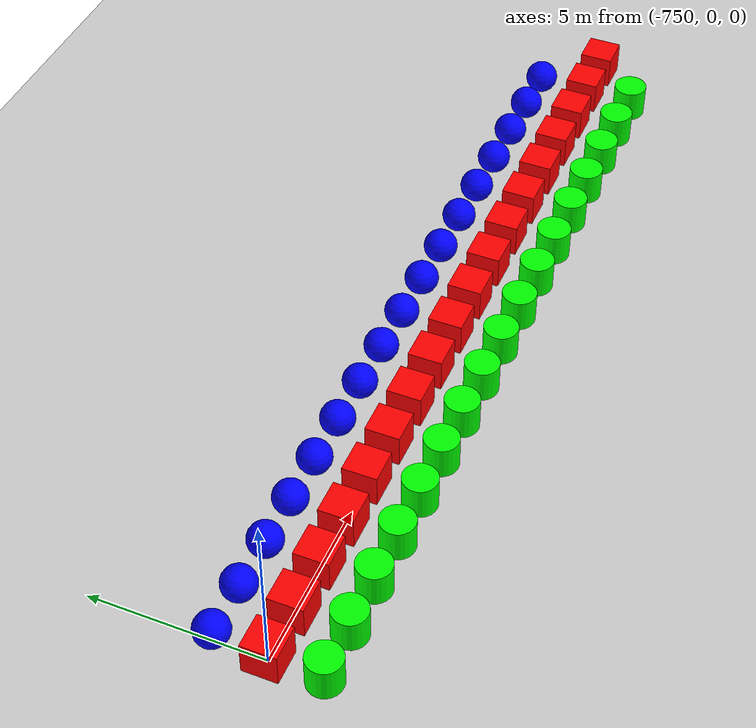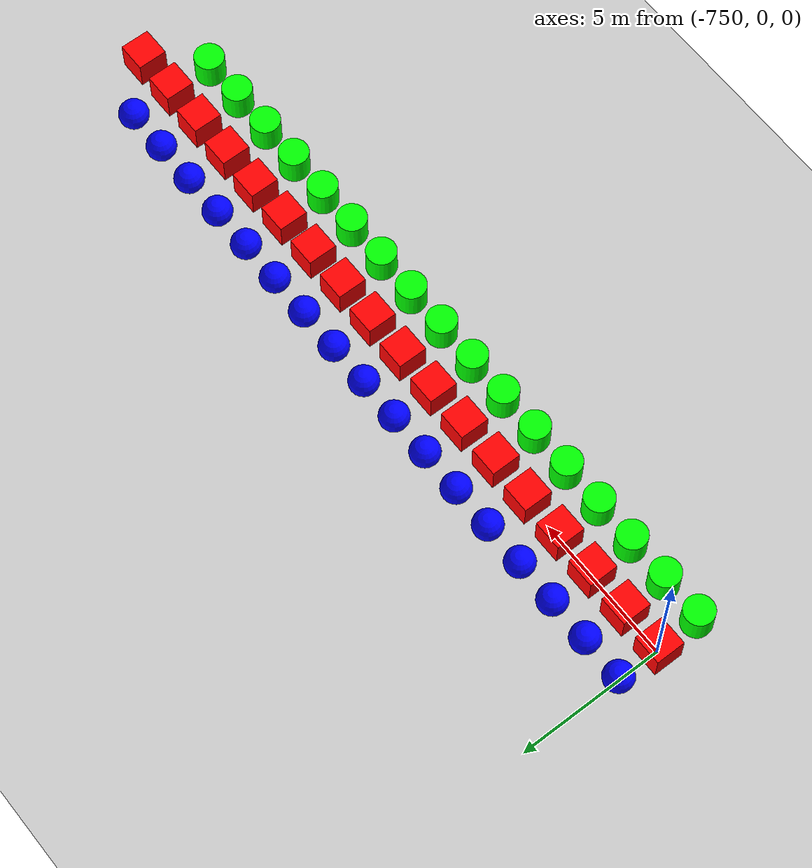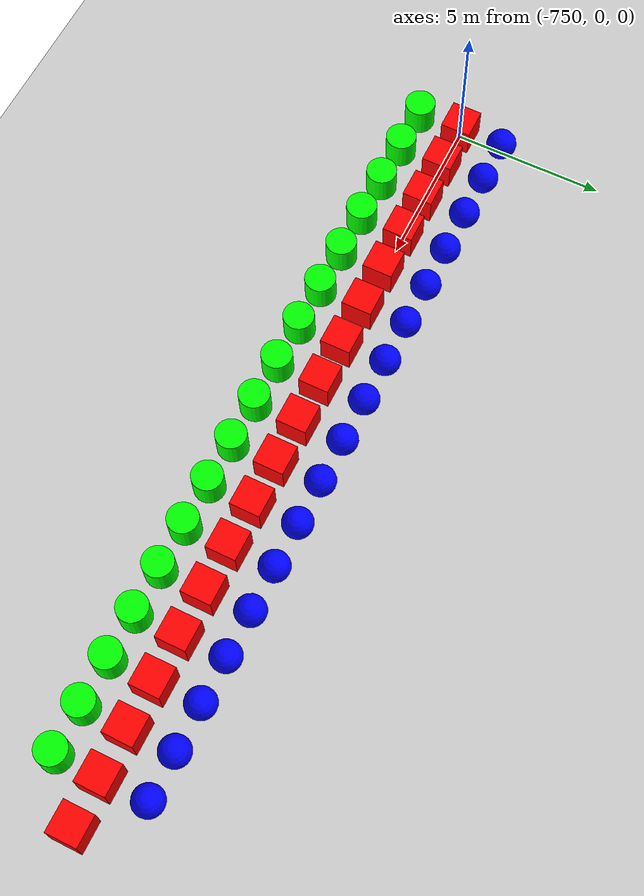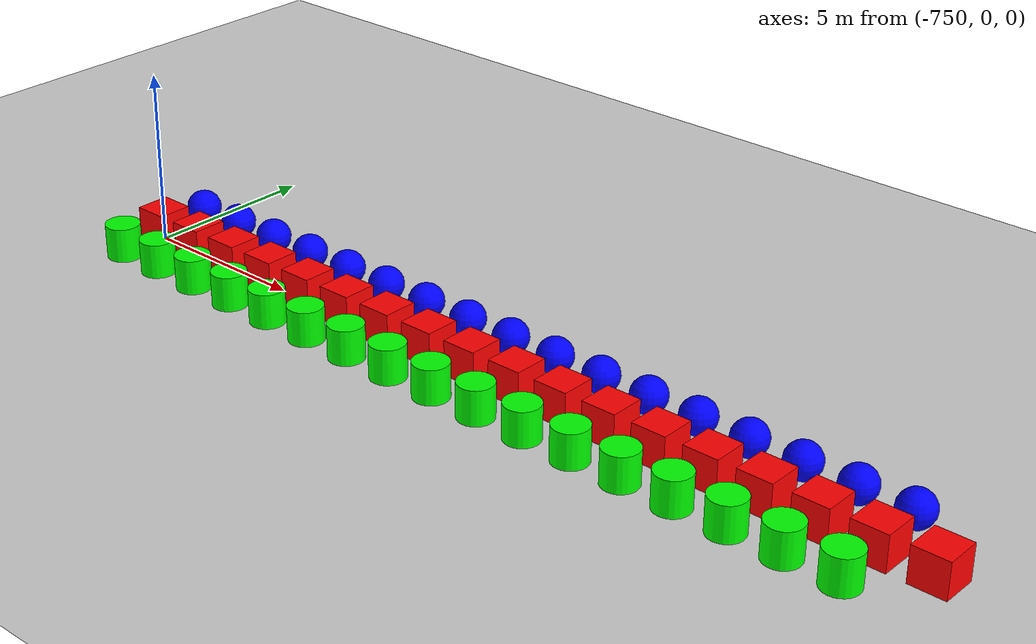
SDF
<sdf version="1.6">
 <world name="shapes">
  <model name="ground_plane">
   <static>true</static>
   <link name="link">
    <collision name="collision">
     <geometry><plane><normal>0 0 1</normal><size>100 100</size></plane></geometry>
    </collision>
    <visual name="visual">
     <geometry><plane><normal>0 0 1</normal><size>100 100</size></plane></geometry>
     <material>
      <ambient>0.8 0.8 0.8 1</ambient>
      <diffuse>0.8 0.8 0.8 1</diffuse>
      <specular>0.8 0.8 0.8 1</specular>
     </material>
    </visual>
   </link>
  </model>
  <model name="box_0">
   <pose>-750.0 0 0.5 0 0 0</pose>
   <link name="box_link">
    <inertial>
     <inertia><ixx>1</ixx><ixy>0</ixy><ixz>0</ixz><iyy>1</iyy><iyz>0</iyz><izz>1</izz></inertia>
     <mass>1.0</mass>
    </inertial>
    <collision name="box_collision"><geometry><box><size>1 1 1</size></box></geometry></collision>
    <visual name="box_visual">
     <geometry><box><size>1 1 1</size></box></geometry>
     <material><ambient>1 0 0 1</ambient><diffuse>1 0 0 1</diffuse><specular>1 0 0 1</specular></material>
    </visual>
   </link>
  </model>
  <model name="cylinder_0">
   <pose>-750.0 -1.5 0.5 0 0 0</pose>
   <link name="cylinder_link">
    <inertial>
     <inertia><ixx>2</ixx><ixy>0</ixy><ixz>0</ixz><iyy>2</iyy><iyz>0</iyz><izz>2</izz></inertia>
     <mass>2.0</mass>
    </inertial>
    <collision name="cylinder_collision">
     <geometry><cylinder><radius>0.5</radius><length>1.0</length></cylinder></geometry>
    </collision>
    <visual name="cylinder_visual">
     <geometry><cylinder><radius>0.5</radius><length>1.0</length></cylinder></geometry>
     <material><ambient>0 1 0 1</ambient><diffuse>0 1 0 1</diffuse><specular>0 1 0 1</specular></material>
    </visual>
   </link>
  </model>
  <model name="sphere_0">
   <pose>-750.0 1.5 0.5 0 0 0</pose>
   <link name="sphere_link">
    <inertial>
     <inertia><ixx>3</ixx><ixy>0</ixy><ixz>0</ixz><iyy>3</iyy><iyz>0</iyz><izz>3</izz></inertia>
     <mass>3.0</mass>
    </inertial>
    <collision name="sphere_collision"><geometry><sphere><radius>0.5</radius></sphere></geometry></collision>
    <visual name="sphere_visual">
     <geometry><sphere><radius>0.5</radius></sphere></geometry>
     <material><ambient>0 0 1 1</ambient><diffuse>0 0 1 1</diffuse><specular>0 0 1 1</specular></material>
    </visual>
   </link>
  </model>
  <model name="box_1">
   <pose>-748.5 0 0.5 0 0 0</pose>
   <link name="box_link">
    <inertial>
     <inertia><ixx>1</ixx><ixy>0</ixy><ixz>0</ixz><iyy>1</iyy><iyz>0</iyz><izz>1</izz></inertia>
     <mass>1.0</mass>
    </inertial>
    <collision name="box_collision"><geometry><box><size>1 1 1</size></box></geometry></collision>
    <visual name="box_visual">
     <geometry><box><size>1 1 1</size></box></geometry>
     <material><ambient>1 0 0 1</ambient><diffuse>1 0 0 1</diffuse><specular>1 0 0 1</specular></material>
    </visual>
   </link>
  </model>
  <model name="cylinder_1">
   <pose>-748.5 -1.5 0.5 0 0 0</pose>
   <link name="cylinder_link">
    <inertial>
     <inertia><ixx>2</ixx><ixy>0</ixy><ixz>0</ixz><iyy>2</iyy><iyz>0</iyz><izz>2</izz></inertia>
     <mass>2.0</mass>
    </inertial>
    <collision name="cylinder_collision">
     <geometry><cylinder><radius>0.5</radius><length>1.0</length></cylinder></geometry>
    </collision>
    <visual name="cylinder_visual">
     <geometry><cylinder><radius>0.5</radius><length>1.0</length></cylinder></geometry>
     <material><ambient>0 1 0 1</ambient><diffuse>0 1 0 1</diffuse><specular>0 1 0 1</specular></material>
    </visual>
   </link>
  </model>
  <model name="sphere_1">
   <pose>-748.5 1.5 0.5 0 0 0</pose>
   <link name="sphere_link">
    <inertial>
     <inertia><ixx>3</ixx><ixy>0</ixy><ixz>0</ixz><iyy>3</iyy><iyz>0</iyz><izz>3</izz></inertia>
     <mass>3.0</mass>
    </inertial>
    <collision name="sphere_collision"><geometry><sphere><radius>0.5</radius></sphere></geometry></collision>
    <visual name="sphere_visual">
     <geometry><sphere><radius>0.5</radius></sphere></geometry>
     <material><ambient>0 0 1 1</ambient><diffuse>0 0 1 1</diffuse><specular>0 0 1 1</specular></material>
    </visual>
   </link>
  </model>
  <model name="box_2">
   <pose>-747.0 0 0.5 0 0 0</pose>
   <link name="box_link">
    <inertial>
     <inertia><ixx>1</ixx><ixy>0</ixy><ixz>0</ixz><iyy>1</iyy><iyz>0</iyz><izz>1</izz></inertia>
     <mass>1.0</mass>
    </inertial>
    <collision name="box_collision"><geometry><box><size>1 1 1</size></box></geometry></collision>
    <visual name="box_visual">
     <geometry><box><size>1 1 1</size></box></geometry>
     <material><ambient>1 0 0 1</ambient><diffuse>1 0 0 1</diffuse><specular>1 0 0 1</specular></material>
    </visual>
   </link>
  </model>
  <model name="cylinder_2">
   <pose>-747.0 -1.5 0.5 0 0 0</pose>
   <link name="cylinder_link">
    <inertial>
     <inertia><ixx>2</ixx><ixy>0</ixy><ixz>0</ixz><iyy>2</iyy><iyz>0</iyz><izz>2</izz></inertia>
     <mass>2.0</mass>
    </inertial>
    <collision name="cylinder_collision">
     <geometry><cylinder><radius>0.5</radius><length>1.0</length></cylinder></geometry>
    </collision>
    <visual name="cylinder_visual">
     <geometry><cylinder><radius>0.5</radius><length>1.0</length></cylinder></geometry>
     <material><ambient>0 1 0 1</ambient><diffuse>0 1 0 1</diffuse><specular>0 1 0 1</specular></material>
    </visual>
   </link>
  </model>
  <model name="sphere_2">
   <pose>-747.0 1.5 0.5 0 0 0</pose>
   <link name="sphere_link">
    <inertial>
     <inertia><ixx>3</ixx><ixy>0</ixy><ixz>0</ixz><iyy>3</iyy><iyz>0</iyz><izz>3</izz></inertia>
     <mass>3.0</mass>
    </inertial>
    <collision name="sphere_collision"><geometry><sphere><radius>0.5</radius></sphere></geometry></collision>
    <visual name="sphere_visual">
     <geometry><sphere><radius>0.5</radius></sphere></geometry>
     <material><ambient>0 0 1 1</ambient><diffuse>0 0 1 1</diffuse><specular>0 0 1 1</specular></material>
    </visual>
   </link>
  </model>
  <model name="box_3">
   <pose>-745.5 0 0.5 0 0 0</pose>
   <link name="box_link">
    <inertial>
     <inertia><ixx>1</ixx><ixy>0</ixy><ixz>0</ixz><iyy>1</iyy><iyz>0</iyz><izz>1</izz></inertia>
     <mass>1.0</mass>
    </inertial>
    <collision name="box_collision"><geometry><box><size>1 1 1</size></box></geometry></collision>
    <visual name="box_visual">
     <geometry><box><size>1 1 1</size></box></geometry>
     <material><ambient>1 0 0 1</ambient><diffuse>1 0 0 1</diffuse><specular>1 0 0 1</specular></material>
    </visual>
   </link>
  </model>
  <model name="cylinder_3">
   <pose>-745.5 -1.5 0.5 0 0 0</pose>
   <link name="cylinder_link">
    <inertial>
     <inertia><ixx>2</ixx><ixy>0</ixy><ixz>0</ixz><iyy>2</iyy><iyz>0</iyz><izz>2</izz></inertia>
     <mass>2.0</mass>
    </inertial>
    <collision name="cylinder_collision">
     <geometry><cylinder><radius>0.5</radius><length>1.0</length></cylinder></geometry>
    </collision>
    <visual name="cylinder_visual">
     <geometry><cylinder><radius>0.5</radius><length>1.0</length></cylinder></geometry>
     <material><ambient>0 1 0 1</ambient><diffuse>0 1 0 1</diffuse><specular>0 1 0 1</specular></material>
    </visual>
   </link>
  </model>
  <model name="sphere_3">
   <pose>-745.5 1.5 0.5 0 0 0</pose>
   <link name="sphere_link">
    <inertial>
     <inertia><ixx>3</ixx><ixy>0</ixy><ixz>0</ixz><iyy>3</iyy><iyz>0</iyz><izz>3</izz></inertia>
     <mass>3.0</mass>
    </inertial>
    <collision name="sphere_collision"><geometry><sphere><radius>0.5</radius></sphere></geometry></collision>
    <visual name="sphere_visual">
     <geometry><sphere><radius>0.5</radius></sphere></geometry>
     <material><ambient>0 0 1 1</ambient><diffuse>0 0 1 1</diffuse><specular>0 0 1 1</specular></material>
    </visual>
   </link>
  </model>
  <model name="box_4">
   <pose>-744.0 0 0.5 0 0 0</pose>
   <link name="box_link">
    <inertial>
     <inertia><ixx>1</ixx><ixy>0</ixy><ixz>0</ixz><iyy>1</iyy><iyz>0</iyz><izz>1</izz></inertia>
     <mass>1.0</mass>
    </inertial>
    <collision name="box_collision"><geometry><box><size>1 1 1</size></box></geometry></collision>
    <visual name="box_visual">
     <geometry><box><size>1 1 1</size></box></geometry>
     <material><ambient>1 0 0 1</ambient><diffuse>1 0 0 1</diffuse><specular>1 0 0 1</specular></material>
    </visual>
   </link>
  </model>
  <model name="cylinder_4">
   <pose>-744.0 -1.5 0.5 0 0 0</pose>
   <link name="cylinder_link">
    <inertial>
     <inertia><ixx>2</ixx><ixy>0</ixy><ixz>0</ixz><iyy>2</iyy><iyz>0</iyz><izz>2</izz></inertia>
     <mass>2.0</mass>
    </inertial>
    <collision name="cylinder_collision">
     <geometry><cylinder><radius>0.5</radius><length>1.0</length></cylinder></geometry>
    </collision>
    <visual name="cylinder_visual">
     <geometry><cylinder><radius>0.5</radius><length>1.0</length></cylinder></geometry>
     <material><ambient>0 1 0 1</ambient><diffuse>0 1 0 1</diffuse><specular>0 1 0 1</specular></material>
    </visual>
   </link>
  </model>
  <model name="sphere_4">
   <pose>-744.0 1.5 0.5 0 0 0</pose>
   <link name="sphere_link">
    <inertial>
     <inertia><ixx>3</ixx><ixy>0</ixy><ixz>0</ixz><iyy>3</iyy><iyz>0</iyz><izz>3</izz></inertia>
     <mass>3.0</mass>
    </inertial>
    <collision name="sphere_collision"><geometry><sphere><radius>0.5</radius></sphere></geometry></collision>
    <visual name="sphere_visual">
     <geometry><sphere><radius>0.5</radius></sphere></geometry>
     <material><ambient>0 0 1 1</ambient><diffuse>0 0 1 1</diffuse><specular>0 0 1 1</specular></material>
    </visual>
   </link>
  </model>
  <model name="box_5">
   <pose>-742.5 0 0.5 0 0 0</pose>
   <link name="box_link">
    <inertial>
     <inertia><ixx>1</ixx><ixy>0</ixy><ixz>0</ixz><iyy>1</iyy><iyz>0</iyz><izz>1</izz></inertia>
     <mass>1.0</mass>
    </inertial>
    <collision name="box_collision"><geometry><box><size>1 1 1</size></box></geometry></collision>
    <visual name="box_visual">
     <geometry><box><size>1 1 1</size></box></geometry>
     <material><ambient>1 0 0 1</ambient><diffuse>1 0 0 1</diffuse><specular>1 0 0 1</specular></material>
    </visual>
   </link>
  </model>
  <model name="cylinder_5">
   <pose>-742.5 -1.5 0.5 0 0 0</pose>
   <link name="cylinder_link">
    <inertial>
     <inertia><ixx>2</ixx><ixy>0</ixy><ixz>0</ixz><iyy>2</iyy><iyz>0</iyz><izz>2</izz></inertia>
     <mass>2.0</mass>
    </inertial>
    <collision name="cylinder_collision">
     <geometry><cylinder><radius>0.5</radius><length>1.0</length></cylinder></geometry>
    </collision>
    <visual name="cylinder_visual">
     <geometry><cylinder><radius>0.5</radius><length>1.0</length></cylinder></geometry>
     <material><ambient>0 1 0 1</ambient><diffuse>0 1 0 1</diffuse><specular>0 1 0 1</specular></material>
    </visual>
   </link>
  </model>
  <model name="sphere_5">
   <pose>-742.5 1.5 0.5 0 0 0</pose>
   <link name="sphere_link">
    <inertial>
     <inertia><ixx>3</ixx><ixy>0</ixy><ixz>0</ixz><iyy>3</iyy><iyz>0</iyz><izz>3</izz></inertia>
     <mass>3.0</mass>
    </inertial>
    <collision name="sphere_collision"><geometry><sphere><radius>0.5</radius></sphere></geometry></collision>
    <visual name="sphere_visual">
     <geometry><sphere><radius>0.5</radius></sphere></geometry>
     <material><ambient>0 0 1 1</ambient><diffuse>0 0 1 1</diffuse><specular>0 0 1 1</specular></material>
    </visual>
   </link>
  </model>
  <model name="box_6">
   <pose>-741.0 0 0.5 0 0 0</pose>
   <link name="box_link">
    <inertial>
     <inertia><ixx>1</ixx><ixy>0</ixy><ixz>0</ixz><iyy>1</iyy><iyz>0</iyz><izz>1</izz></inertia>
     <mass>1.0</mass>
    </inertial>
    <collision name="box_collision"><geometry><box><size>1 1 1</size></box></geometry></collision>
    <visual name="box_visual">
     <geometry><box><size>1 1 1</size></box></geometry>
     <material><ambient>1 0 0 1</ambient><diffuse>1 0 0 1</diffuse><specular>1 0 0 1</specular></material>
    </visual>
   </link>
  </model>
  <model name="cylinder_6">
   <pose>-741.0 -1.5 0.5 0 0 0</pose>
   <link name="cylinder_link">
    <inertial>
     <inertia><ixx>2</ixx><ixy>0</ixy><ixz>0</ixz><iyy>2</iyy><iyz>0</iyz><izz>2</izz></inertia>
     <mass>2.0</mass>
    </inertial>
    <collision name="cylinder_collision">
     <geometry><cylinder><radius>0.5</radius><length>1.0</length></cylinder></geometry>
    </collision>
    <visual name="cylinder_visual">
     <geometry><cylinder><radius>0.5</radius><length>1.0</length></cylinder></geometry>
     <material><ambient>0 1 0 1</ambient><diffuse>0 1 0 1</diffuse><specular>0 1 0 1</specular></material>
    </visual>
   </link>
  </model>
  <model name="sphere_6">
   <pose>-741.0 1.5 0.5 0 0 0</pose>
   <link name="sphere_link">
    <inertial>
     <inertia><ixx>3</ixx><ixy>0</ixy><ixz>0</ixz><iyy>3</iyy><iyz>0</iyz><izz>3</izz></inertia>
     <mass>3.0</mass>
    </inertial>
    <collision name="sphere_collision"><geometry><sphere><radius>0.5</radius></sphere></geometry></collision>
    <visual name="sphere_visual">
     <geometry><sphere><radius>0.5</radius></sphere></geometry>
     <material><ambient>0 0 1 1</ambient><diffuse>0 0 1 1</diffuse><specular>0 0 1 1</specular></material>
    </visual>
   </link>
  </model>
  <model name="box_7">
   <pose>-739.5 0 0.5 0 0 0</pose>
   <link name="box_link">
    <inertial>
     <inertia><ixx>1</ixx><ixy>0</ixy><ixz>0</ixz><iyy>1</iyy><iyz>0</iyz><izz>1</izz></inertia>
     <mass>1.0</mass>
    </inertial>
    <collision name="box_collision"><geometry><box><size>1 1 1</size></box></geometry></collision>
    <visual name="box_visual">
     <geometry><box><size>1 1 1</size></box></geometry>
     <material><ambient>1 0 0 1</ambient><diffuse>1 0 0 1</diffuse><specular>1 0 0 1</specular></material>
    </visual>
   </link>
  </model>
  <model name="cylinder_7">
   <pose>-739.5 -1.5 0.5 0 0 0</pose>
   <link name="cylinder_link">
    <inertial>
     <inertia><ixx>2</ixx><ixy>0</ixy><ixz>0</ixz><iyy>2</iyy><iyz>0</iyz><izz>2</izz></inertia>
     <mass>2.0</mass>
    </inertial>
    <collision name="cylinder_collision">
     <geometry><cylinder><radius>0.5</radius><length>1.0</length></cylinder></geometry>
    </collision>
    <visual name="cylinder_visual">
     <geometry><cylinder><radius>0.5</radius><length>1.0</length></cylinder></geometry>
     <material><ambient>0 1 0 1</ambient><diffuse>0 1 0 1</diffuse><specular>0 1 0 1</specular></material>
    </visual>
   </link>
  </model>
  <model name="sphere_7">
   <pose>-739.5 1.5 0.5 0 0 0</pose>
   <link name="sphere_link">
    <inertial>
     <inertia><ixx>3</ixx><ixy>0</ixy><ixz>0</ixz><iyy>3</iyy><iyz>0</iyz><izz>3</izz></inertia>
     <mass>3.0</mass>
    </inertial>
    <collision name="sphere_collision"><geometry><sphere><radius>0.5</radius></sphere></geometry></collision>
    <visual name="sphere_visual">
     <geometry><sphere><radius>0.5</radius></sphere></geometry>
     <material><ambient>0 0 1 1</ambient><diffuse>0 0 1 1</diffuse><specular>0 0 1 1</specular></material>
    </visual>
   </link>
  </model>
  <model name="box_8">
   <pose>-738.0 0 0.5 0 0 0</pose>
   <link name="box_link">
    <inertial>
     <inertia><ixx>1</ixx><ixy>0</ixy><ixz>0</ixz><iyy>1</iyy><iyz>0</iyz><izz>1</izz></inertia>
     <mass>1.0</mass>
    </inertial>
    <collision name="box_collision"><geometry><box><size>1 1 1</size></box></geometry></collision>
    <visual name="box_visual">
     <geometry><box><size>1 1 1</size></box></geometry>
     <material><ambient>1 0 0 1</ambient><diffuse>1 0 0 1</diffuse><specular>1 0 0 1</specular></material>
    </visual>
   </link>
  </model>
  <model name="cylinder_8">
   <pose>-738.0 -1.5 0.5 0 0 0</pose>
   <link name="cylinder_link">
    <inertial>
     <inertia><ixx>2</ixx><ixy>0</ixy><ixz>0</ixz><iyy>2</iyy><iyz>0</iyz><izz>2</izz></inertia>
     <mass>2.0</mass>
    </inertial>
    <collision name="cylinder_collision">
     <geometry><cylinder><radius>0.5</radius><length>1.0</length></cylinder></geometry>
    </collision>
    <visual name="cylinder_visual">
     <geometry><cylinder><radius>0.5</radius><length>1.0</length></cylinder></geometry>
     <material><ambient>0 1 0 1</ambient><diffuse>0 1 0 1</diffuse><specular>0 1 0 1</specular></material>
    </visual>
   </link>
  </model>
  <model name="sphere_8">
   <pose>-738.0 1.5 0.5 0 0 0</pose>
   <link name="sphere_link">
    <inertial>
     <inertia><ixx>3</ixx><ixy>0</ixy><ixz>0</ixz><iyy>3</iyy><iyz>0</iyz><izz>3</izz></inertia>
     <mass>3.0</mass>
    </inertial>
    <collision name="sphere_collision"><geometry><sphere><radius>0.5</radius></sphere></geometry></collision>
    <visual name="sphere_visual">
     <geometry><sphere><radius>0.5</radius></sphere></geometry>
     <material><ambient>0 0 1 1</ambient><diffuse>0 0 1 1</diffuse><specular>0 0 1 1</specular></material>
    </visual>
   </link>
  </model>
  <model name="box_9">
   <pose>-736.5 0 0.5 0 0 0</pose>
   <link name="box_link">
    <inertial>
     <inertia><ixx>1</ixx><ixy>0</ixy><ixz>0</ixz><iyy>1</iyy><iyz>0</iyz><izz>1</izz></inertia>
     <mass>1.0</mass>
    </inertial>
    <collision name="box_collision"><geometry><box><size>1 1 1</size></box></geometry></collision>
    <visual name="box_visual">
     <geometry><box><size>1 1 1</size></box></geometry>
     <material><ambient>1 0 0 1</ambient><diffuse>1 0 0 1</diffuse><specular>1 0 0 1</specular></material>
    </visual>
   </link>
  </model>
  <model name="cylinder_9">
   <pose>-736.5 -1.5 0.5 0 0 0</pose>
   <link name="cylinder_link">
    <inertial>
     <inertia><ixx>2</ixx><ixy>0</ixy><ixz>0</ixz><iyy>2</iyy><iyz>0</iyz><izz>2</izz></inertia>
     <mass>2.0</mass>
    </inertial>
    <collision name="cylinder_collision">
     <geometry><cylinder><radius>0.5</radius><length>1.0</length></cylinder></geometry>
    </collision>
    <visual name="cylinder_visual">
     <geometry><cylinder><radius>0.5</radius><length>1.0</length></cylinder></geometry>
     <material><ambient>0 1 0 1</ambient><diffuse>0 1 0 1</diffuse><specular>0 1 0 1</specular></material>
    </visual>
   </link>
  </model>
  <model name="sphere_9">
   <pose>-736.5 1.5 0.5 0 0 0</pose>
   <link name="sphere_link">
    <inertial>
     <inertia><ixx>3</ixx><ixy>0</ixy><ixz>0</ixz><iyy>3</iyy><iyz>0</iyz><izz>3</izz></inertia>
     <mass>3.0</mass>
    </inertial>
    <collision name="sphere_collision"><geometry><sphere><radius>0.5</radius></sphere></geometry></collision>
    <visual name="sphere_visual">
     <geometry><sphere><radius>0.5</radius></sphere></geometry>
     <material><ambient>0 0 1 1</ambient><diffuse>0 0 1 1</diffuse><specular>0 0 1 1</specular></material>
    </visual>
   </link>
  </model>
  <model name="box_10">
   <pose>-735.0 0 0.5 0 0 0</pose>
   <link name="box_link">
    <inertial>
     <inertia><ixx>1</ixx><ixy>0</ixy><ixz>0</ixz><iyy>1</iyy><iyz>0</iyz><izz>1</izz></inertia>
     <mass>1.0</mass>
    </inertial>
    <collision name="box_collision"><geometry><box><size>1 1 1</size></box></geometry></collision>
    <visual name="box_visual">
     <geometry><box><size>1 1 1</size></box></geometry>
     <material><ambient>1 0 0 1</ambient><diffuse>1 0 0 1</diffuse><specular>1 0 0 1</specular></material>
    </visual>
   </link>
  </model>
  <model name="cylinder_10">
   <pose>-735.0 -1.5 0.5 0 0 0</pose>
   <link name="cylinder_link">
    <inertial>
     <inertia><ixx>2</ixx><ixy>0</ixy><ixz>0</ixz><iyy>2</iyy><iyz>0</iyz><izz>2</izz></inertia>
     <mass>2.0</mass>
    </inertial>
    <collision name="cylinder_collision">
     <geometry><cylinder><radius>0.5</radius><length>1.0</length></cylinder></geometry>
    </collision>
    <visual name="cylinder_visual">
     <geometry><cylinder><radius>0.5</radius><length>1.0</length></cylinder></geometry>
     <material><ambient>0 1 0 1</ambient><diffuse>0 1 0 1</diffuse><specular>0 1 0 1</specular></material>
    </visual>
   </link>
  </model>
  <model name="sphere_10">
   <pose>-735.0 1.5 0.5 0 0 0</pose>
   <link name="sphere_link">
    <inertial>
     <inertia><ixx>3</ixx><ixy>0</ixy><ixz>0</ixz><iyy>3</iyy><iyz>0</iyz><izz>3</izz></inertia>
     <mass>3.0</mass>
    </inertial>
    <collision name="sphere_collision"><geometry><sphere><radius>0.5</radius></sphere></geometry></collision>
    <visual name="sphere_visual">
     <geometry><sphere><radius>0.5</radius></sphere></geometry>
     <material><ambient>0 0 1 1</ambient><diffuse>0 0 1 1</diffuse><specular>0 0 1 1</specular></material>
    </visual>
   </link>
  </model>
  <model name="box_11">
   <pose>-733.5 0 0.5 0 0 0</pose>
   <link name="box_link">
    <inertial>
     <inertia><ixx>1</ixx><ixy>0</ixy><ixz>0</ixz><iyy>1</iyy><iyz>0</iyz><izz>1</izz></inertia>
     <mass>1.0</mass>
    </inertial>
    <collision name="box_collision"><geometry><box><size>1 1 1</size></box></geometry></collision>
    <visual name="box_visual">
     <geometry><box><size>1 1 1</size></box></geometry>
     <material><ambient>1 0 0 1</ambient><diffuse>1 0 0 1</diffuse><specular>1 0 0 1</specular></material>
    </visual>
   </link>
  </model>
  <model name="cylinder_11">
   <pose>-733.5 -1.5 0.5 0 0 0</pose>
   <link name="cylinder_link">
    <inertial>
     <inertia><ixx>2</ixx><ixy>0</ixy><ixz>0</ixz><iyy>2</iyy><iyz>0</iyz><izz>2</izz></inertia>
     <mass>2.0</mass>
    </inertial>
    <collision name="cylinder_collision">
     <geometry><cylinder><radius>0.5</radius><length>1.0</length></cylinder></geometry>
    </collision>
    <visual name="cylinder_visual">
     <geometry><cylinder><radius>0.5</radius><length>1.0</length></cylinder></geometry>
     <material><ambient>0 1 0 1</ambient><diffuse>0 1 0 1</diffuse><specular>0 1 0 1</specular></material>
    </visual>
   </link>
  </model>
  <model name="sphere_11">
   <pose>-733.5 1.5 0.5 0 0 0</pose>
   <link name="sphere_link">
    <inertial>
     <inertia><ixx>3</ixx><ixy>0</ixy><ixz>0</ixz><iyy>3</iyy><iyz>0</iyz><izz>3</izz></inertia>
     <mass>3.0</mass>
    </inertial>
    <collision name="sphere_collision"><geometry><sphere><radius>0.5</radius></sphere></geometry></collision>
    <visual name="sphere_visual">
     <geometry><sphere><radius>0.5</radius></sphere></geometry>
     <material><ambient>0 0 1 1</ambient><diffuse>0 0 1 1</diffuse><specular>0 0 1 1</specular></material>
    </visual>
   </link>
  </model>
  <model name="box_12">
   <pose>-732.0 0 0.5 0 0 0</pose>
   <link name="box_link">
    <inertial>
     <inertia><ixx>1</ixx><ixy>0</ixy><ixz>0</ixz><iyy>1</iyy><iyz>0</iyz><izz>1</izz></inertia>
     <mass>1.0</mass>
    </inertial>
    <collision name="box_collision"><geometry><box><size>1 1 1</size></box></geometry></collision>
    <visual name="box_visual">
     <geometry><box><size>1 1 1</size></box></geometry>
     <material><ambient>1 0 0 1</ambient><diffuse>1 0 0 1</diffuse><specular>1 0 0 1</specular></material>
    </visual>
   </link>
  </model>
  <model name="cylinder_12">
   <pose>-732.0 -1.5 0.5 0 0 0</pose>
   <link name="cylinder_link">
    <inertial>
     <inertia><ixx>2</ixx><ixy>0</ixy><ixz>0</ixz><iyy>2</iyy><iyz>0</iyz><izz>2</izz></inertia>
     <mass>2.0</mass>
    </inertial>
    <collision name="cylinder_collision">
     <geometry><cylinder><radius>0.5</radius><length>1.0</length></cylinder></geometry>
    </collision>
    <visual name="cylinder_visual">
     <geometry><cylinder><radius>0.5</radius><length>1.0</length></cylinder></geometry>
     <material><ambient>0 1 0 1</ambient><diffuse>0 1 0 1</diffuse><specular>0 1 0 1</specular></material>
    </visual>
   </link>
  </model>
  <model name="sphere_12">
   <pose>-732.0 1.5 0.5 0 0 0</pose>
   <link name="sphere_link">
    <inertial>
     <inertia><ixx>3</ixx><ixy>0</ixy><ixz>0</ixz><iyy>3</iyy><iyz>0</iyz><izz>3</izz></inertia>
     <mass>3.0</mass>
    </inertial>
    <collision name="sphere_collision"><geometry><sphere><radius>0.5</radius></sphere></geometry></collision>
    <visual name="sphere_visual">
     <geometry><sphere><radius>0.5</radius></sphere></geometry>
     <material><ambient>0 0 1 1</ambient><diffuse>0 0 1 1</diffuse><specular>0 0 1 1</specular></material>
    </visual>
   </link>
  </model>
  <model name="box_13">
   <pose>-730.5 0 0.5 0 0 0</pose>
   <link name="box_link">
    <inertial>
     <inertia><ixx>1</ixx><ixy>0</ixy><ixz>0</ixz><iyy>1</iyy><iyz>0</iyz><izz>1</izz></inertia>
     <mass>1.0</mass>
    </inertial>
    <collision name="box_collision"><geometry><box><size>1 1 1</size></box></geometry></collision>
    <visual name="box_visual">
     <geometry><box><size>1 1 1</size></box></geometry>
     <material><ambient>1 0 0 1</ambient><diffuse>1 0 0 1</diffuse><specular>1 0 0 1</specular></material>
    </visual>
   </link>
  </model>
  <model name="cylinder_13">
   <pose>-730.5 -1.5 0.5 0 0 0</pose>
   <link name="cylinder_link">
    <inertial>
     <inertia><ixx>2</ixx><ixy>0</ixy><ixz>0</ixz><iyy>2</iyy><iyz>0</iyz><izz>2</izz></inertia>
     <mass>2.0</mass>
    </inertial>
    <collision name="cylinder_collision">
     <geometry><cylinder><radius>0.5</radius><length>1.0</length></cylinder></geometry>
    </collision>
    <visual name="cylinder_visual">
     <geometry><cylinder><radius>0.5</radius><length>1.0</length></cylinder></geometry>
     <material><ambient>0 1 0 1</ambient><diffuse>0 1 0 1</diffuse><specular>0 1 0 1</specular></material>
    </visual>
   </link>
  </model>
  <model name="sphere_13">
   <pose>-730.5 1.5 0.5 0 0 0</pose>
   <link name="sphere_link">
    <inertial>
     <inertia><ixx>3</ixx><ixy>0</ixy><ixz>0</ixz><iyy>3</iyy><iyz>0</iyz><izz>3</izz></inertia>
     <mass>3.0</mass>
    </inertial>
    <collision name="sphere_collision"><geometry><sphere><radius>0.5</radius></sphere></geometry></collision>
    <visual name="sphere_visual">
     <geometry><sphere><radius>0.5</radius></sphere></geometry>
     <material><ambient>0 0 1 1</ambient><diffuse>0 0 1 1</diffuse><specular>0 0 1 1</specular></material>
    </visual>
   </link>
  </model>
  <model name="box_14">
   <pose>-729.0 0 0.5 0 0 0</pose>
   <link name="box_link">
    <inertial>
     <inertia><ixx>1</ixx><ixy>0</ixy><ixz>0</ixz><iyy>1</iyy><iyz>0</iyz><izz>1</izz></inertia>
     <mass>1.0</mass>
    </inertial>
    <collision name="box_collision"><geometry><box><size>1 1 1</size></box></geometry></collision>
    <visual name="box_visual">
     <geometry><box><size>1 1 1</size></box></geometry>
     <material><ambient>1 0 0 1</ambient><diffuse>1 0 0 1</diffuse><specular>1 0 0 1</specular></material>
    </visual>
   </link>
  </model>
  <model name="cylinder_14">
   <pose>-729.0 -1.5 0.5 0 0 0</pose>
   <link name="cylinder_link">
    <inertial>
     <inertia><ixx>2</ixx><ixy>0</ixy><ixz>0</ixz><iyy>2</iyy><iyz>0</iyz><izz>2</izz></inertia>
     <mass>2.0</mass>
    </inertial>
    <collision name="cylinder_collision">
     <geometry><cylinder><radius>0.5</radius><length>1.0</length></cylinder></geometry>
    </collision>
    <visual name="cylinder_visual">
     <geometry><cylinder><radius>0.5</radius><length>1.0</length></cylinder></geometry>
     <material><ambient>0 1 0 1</ambient><diffuse>0 1 0 1</diffuse><specular>0 1 0 1</specular></material>
    </visual>
   </link>
  </model>
  <model name="sphere_14">
   <pose>-729.0 1.5 0.5 0 0 0</pose>
   <link name="sphere_link">
    <inertial>
     <inertia><ixx>3</ixx><ixy>0</ixy><ixz>0</ixz><iyy>3</iyy><iyz>0</iyz><izz>3</izz></inertia>
     <mass>3.0</mass>
    </inertial>
    <collision name="sphere_collision"><geometry><sphere><radius>0.5</radius></sphere></geometry></collision>
    <visual name="sphere_visual">
     <geometry><sphere><radius>0.5</radius></sphere></geometry>
     <material><ambient>0 0 1 1</ambient><diffuse>0 0 1 1</diffuse><specular>0 0 1 1</specular></material>
    </visual>
   </link>
  </model>
  <model name="box_15">
   <pose>-727.5 0 0.5 0 0 0</pose>
   <link name="box_link">
    <inertial>
     <inertia><ixx>1</ixx><ixy>0</ixy><ixz>0</ixz><iyy>1</iyy><iyz>0</iyz><izz>1</izz></inertia>
     <mass>1.0</mass>
    </inertial>
    <collision name="box_collision"><geometry><box><size>1 1 1</size></box></geometry></collision>
    <visual name="box_visual">
     <geometry><box><size>1 1 1</size></box></geometry>
     <material><ambient>1 0 0 1</ambient><diffuse>1 0 0 1</diffuse><specular>1 0 0 1</specular></material>
    </visual>
   </link>
  </model>
  <model name="cylinder_15">
   <pose>-727.5 -1.5 0.5 0 0 0</pose>
   <link name="cylinder_link">
    <inertial>
     <inertia><ixx>2</ixx><ixy>0</ixy><ixz>0</ixz><iyy>2</iyy><iyz>0</iyz><izz>2</izz></inertia>
     <mass>2.0</mass>
    </inertial>
    <collision name="cylinder_collision">
     <geometry><cylinder><radius>0.5</radius><length>1.0</length></cylinder></geometry>
    </collision>
    <visual name="cylinder_visual">
     <geometry><cylinder><radius>0.5</radius><length>1.0</length></cylinder></geometry>
     <material><ambient>0 1 0 1</ambient><diffuse>0 1 0 1</diffuse><specular>0 1 0 1</specular></material>
    </visual>
   </link>
  </model>
  <model name="sphere_15">
   <pose>-727.5 1.5 0.5 0 0 0</pose>
   <link name="sphere_link">
    <inertial>
     <inertia><ixx>3</ixx><ixy>0</ixy><ixz>0</ixz><iyy>3</iyy><iyz>0</iyz><izz>3</izz></inertia>
     <mass>3.0</mass>
    </inertial>
    <collision name="sphere_collision"><geometry><sphere><radius>0.5</radius></sphere></geometry></collision>
    <visual name="sphere_visual">
     <geometry><sphere><radius>0.5</radius></sphere></geometry>
     <material><ambient>0 0 1 1</ambient><diffuse>0 0 1 1</diffuse><specular>0 0 1 1</specular></material>
    </visual>
   </link>
  </model>
  <model name="box_16">
   <pose>-726.0 0 0.5 0 0 0</pose>
   <link name="box_link">
    <inertial>
     <inertia><ixx>1</ixx><ixy>0</ixy><ixz>0</ixz><iyy>1</iyy><iyz>0</iyz><izz>1</izz></inertia>
     <mass>1.0</mass>
    </inertial>
    <collision name="box_collision"><geometry><box><size>1 1 1</size></box></geometry></collision>
    <visual name="box_visual">
     <geometry><box><size>1 1 1</size></box></geometry>
     <material><ambient>1 0 0 1</ambient><diffuse>1 0 0 1</diffuse><specular>1 0 0 1</specular></material>
    </visual>
   </link>
  </model>
  <model name="cylinder_16">
   <pose>-726.0 -1.5 0.5 0 0 0</pose>
   <link name="cylinder_link">
    <inertial>
     <inertia><ixx>2</ixx><ixy>0</ixy><ixz>0</ixz><iyy>2</iyy><iyz>0</iyz><izz>2</izz></inertia>
     <mass>2.0</mass>
    </inertial>
    <collision name="cylinder_collision">
     <geometry><cylinder><radius>0.5</radius><length>1.0</length></cylinder></geometry>
    </collision>
    <visual name="cylinder_visual">
     <geometry><cylinder><radius>0.5</radius><length>1.0</length></cylinder></geometry>
     <material><ambient>0 1 0 1</ambient><diffuse>0 1 0 1</diffuse><specular>0 1 0 1</specular></material>
    </visual>
   </link>
  </model>
  <model name="sphere_16">
   <pose>-726.0 1.5 0.5 0 0 0</pose>
   <link name="sphere_link">
    <inertial>
     <inertia><ixx>3</ixx><ixy>0</ixy><ixz>0</ixz><iyy>3</iyy><iyz>0</iyz><izz>3</izz></inertia>
     <mass>3.0</mass>
    </inertial>
    <collision name="sphere_collision"><geometry><sphere><radius>0.5</radius></sphere></geometry></collision>
    <visual name="sphere_visual">
     <geometry><sphere><radius>0.5</radius></sphere></geometry>
     <material><ambient>0 0 1 1</ambient><diffuse>0 0 1 1</diffuse><specular>0 0 1 1</specular></material>
    </visual>
   </link>
  </model>
  <model name="box_17">
   <pose>-724.5 0 0.5 0 0 0</pose>
   <link name="box_link">
    <inertial>
     <inertia><ixx>1</ixx><ixy>0</ixy><ixz>0</ixz><iyy>1</iyy><iyz>0</iyz><izz>1</izz></inertia>
     <mass>1.0</mass>
    </inertial>
    <collision name="box_collision"><geometry><box><size>1 1 1</size></box></geometry></collision>
    <visual name="box_visual">
     <geometry><box><size>1 1 1</size></box></geometry>
     <material><ambient>1 0 0 1</ambient><diffuse>1 0 0 1</diffuse><specular>1 0 0 1</specular></material>
    </visual>
   </link>
  </model>
 </world>
</sdf>
